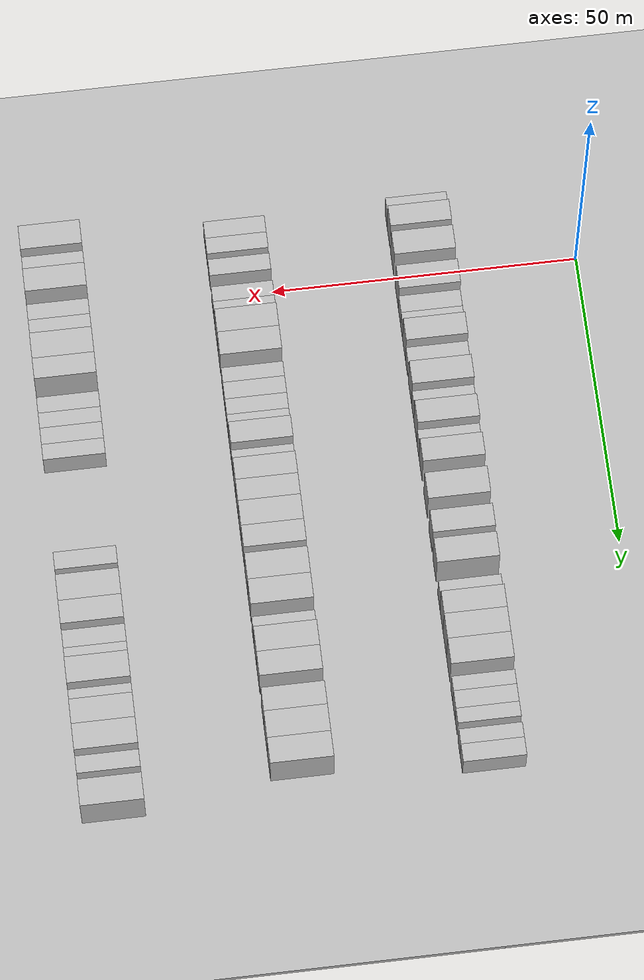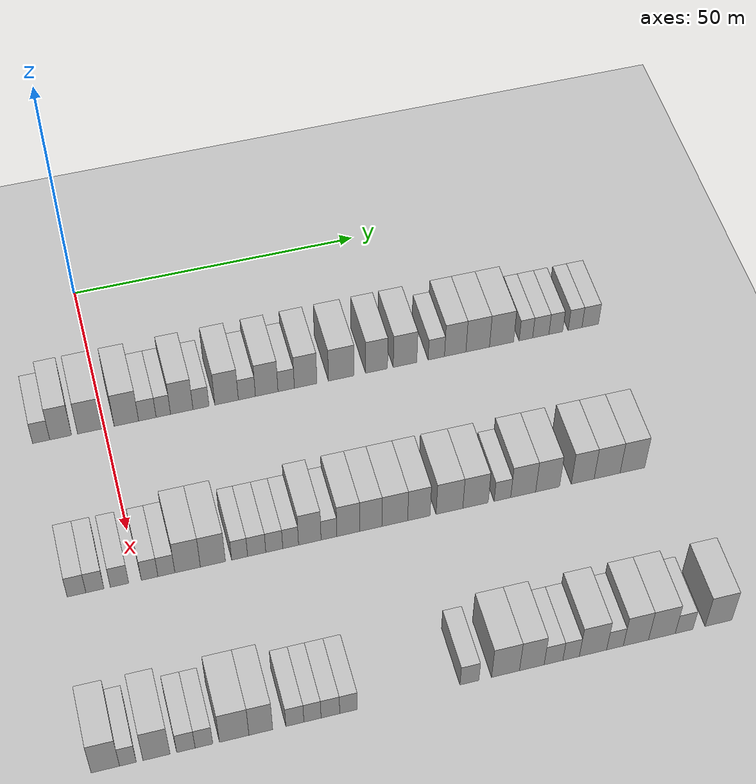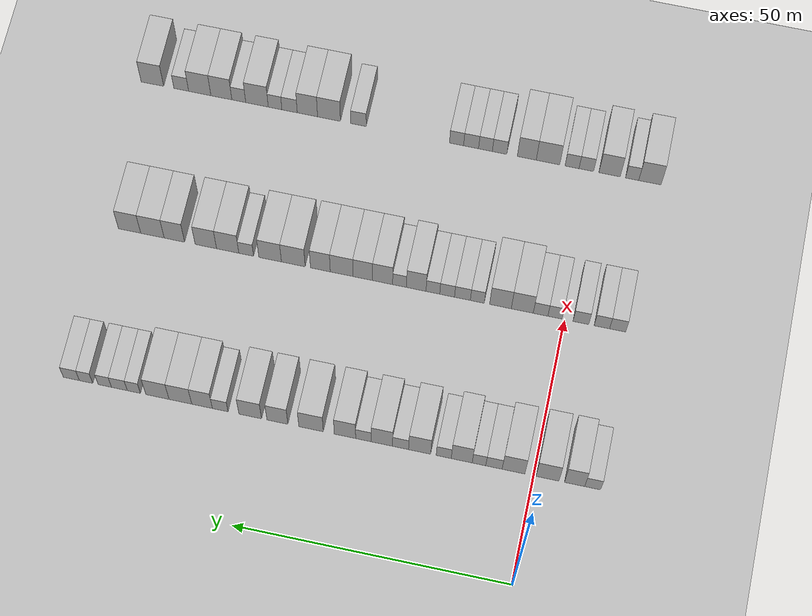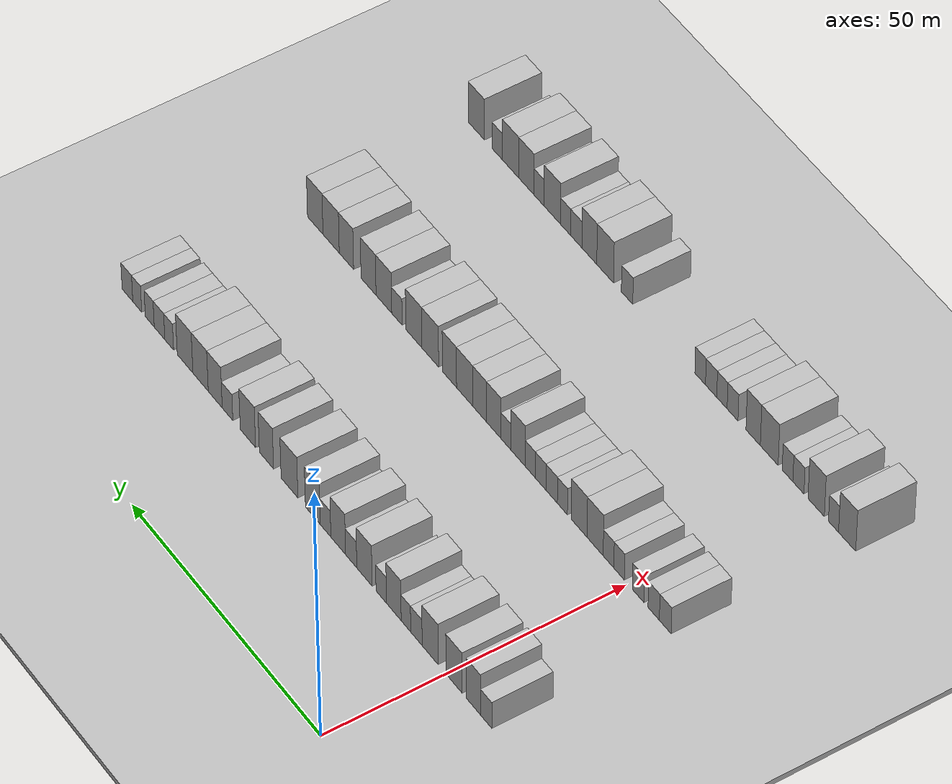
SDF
<sdf version="1.6">
 <world name="default">
  <include><name>ground_plane_1</name><uri>model://HANNAS_ground_plane</uri></include>
  <include>
   <name>ground_plane_2</name>
   <uri>model://HANNAS_ground_plane</uri>
   <pose>100 0 0  0 0 0</pose>
  </include>
  <model name="building_103">
   <static>1</static>
   <pose>25.0000 -10.5104 0 0.000000 0.000000 0.000000</pose>
   <link name="link">
    <pose>0 0 3.00 0 0 0</pose>
    <collision name="collision"><geometry><box><size>10.0000 2.8526 6.0000</size></box></geometry></collision>
    <visual name="visual">
     <cast_shadows>0</cast_shadows>
     <geometry><box><size>10.0000 2.8526 6.0000</size></box></geometry>
     <material>
      <script>
       <uri>model://HANNAS_wall/materials/scripts</uri>
       <uri>model://HANNAS_wall/materials/textures</uri>
       <name>vrc/HANNAS_wall</name>
      </script>
     </material>
    </visual>
   </link>
  </model>
  <model name="building_104">
   <static>1</static>
   <pose>25.0000 -7.2760 0 0.000000 0.000000 0.000000</pose>
   <link name="link">
    <pose>0 0 4.50 0 0 0</pose>
    <collision name="collision"><geometry><box><size>10.0000 3.6163 9.0000</size></box></geometry></collision>
    <visual name="visual">
     <cast_shadows>0</cast_shadows>
     <geometry><box><size>10.0000 3.6163 9.0000</size></box></geometry>
     <material>
      <script>
       <uri>model://HANNAS_wall/materials/scripts</uri>
       <uri>model://HANNAS_wall/materials/textures</uri>
       <name>vrc/HANNAS_wall</name>
      </script>
     </material>
    </visual>
   </link>
  </model>
  <model name="building_105">
   <static>1</static>
   <pose>25.0000 -2.4095 0 0.000000 0.000000 0.000000</pose>
   <link name="link">
    <pose>0 0 4.50 0 0 0</pose>
    <collision name="collision"><geometry><box><size>10.0000 4.1167 9.0000</size></box></geometry></collision>
    <visual name="visual">
     <cast_shadows>0</cast_shadows>
     <geometry><box><size>10.0000 4.1167 9.0000</size></box></geometry>
     <material>
      <script>
       <uri>model://HANNAS_wall/materials/scripts</uri>
       <uri>model://HANNAS_wall/materials/textures</uri>
       <name>vrc/HANNAS_wall</name>
      </script>
     </material>
    </visual>
   </link>
  </model>
  <model name="building_106">
   <static>1</static>
   <pose>25.0000 3.6999 0 0.000000 0.000000 0.000000</pose>
   <link name="link">
    <pose>0 0 4.50 0 0 0</pose>
    <collision name="collision"><geometry><box><size>10.0000 4.1021 9.0000</size></box></geometry></collision>
    <visual name="visual">
     <cast_shadows>0</cast_shadows>
     <geometry><box><size>10.0000 4.1021 9.0000</size></box></geometry>
     <material>
      <script>
       <uri>model://HANNAS_wall/materials/scripts</uri>
       <uri>model://HANNAS_wall/materials/textures</uri>
       <name>vrc/HANNAS_wall</name>
      </script>
     </material>
    </visual>
   </link>
  </model>
  <model name="building_107">
   <static>1</static>
   <pose>25.0000 7.2233 0 0.000000 0.000000 0.000000</pose>
   <link name="link">
    <pose>0 0 3.00 0 0 0</pose>
    <collision name="collision"><geometry><box><size>10.0000 2.9448 6.0000</size></box></geometry></collision>
    <visual name="visual">
     <cast_shadows>0</cast_shadows>
     <geometry><box><size>10.0000 2.9448 6.0000</size></box></geometry>
     <material>
      <script>
       <uri>model://HANNAS_wall/materials/scripts</uri>
       <uri>model://HANNAS_wall/materials/textures</uri>
       <name>vrc/HANNAS_wall</name>
      </script>
     </material>
    </visual>
   </link>
  </model>
  <model name="building_108">
   <static>1</static>
   <pose>25.0000 9.9185 0 0.000000 0.000000 0.000000</pose>
   <link name="link">
    <pose>0 0 3.00 0 0 0</pose>
    <collision name="collision"><geometry><box><size>10.0000 2.4455 6.0000</size></box></geometry></collision>
    <visual name="visual">
     <cast_shadows>0</cast_shadows>
     <geometry><box><size>10.0000 2.4455 6.0000</size></box></geometry>
     <material>
      <script>
       <uri>model://HANNAS_wall/materials/scripts</uri>
       <uri>model://HANNAS_wall/materials/textures</uri>
       <name>vrc/HANNAS_wall</name>
      </script>
     </material>
    </visual>
   </link>
  </model>
  <model name="building_109">
   <static>1</static>
   <pose>25.0000 13.0404 0 0.000000 0.000000 0.000000</pose>
   <link name="link">
    <pose>0 0 4.50 0 0 0</pose>
    <collision name="collision"><geometry><box><size>10.0000 3.7983 9.0000</size></box></geometry></collision>
    <visual name="visual">
     <cast_shadows>0</cast_shadows>
     <geometry><box><size>10.0000 3.7983 9.0000</size></box></geometry>
     <material>
      <script>
       <uri>model://HANNAS_wall/materials/scripts</uri>
       <uri>model://HANNAS_wall/materials/textures</uri>
       <name>vrc/HANNAS_wall</name>
      </script>
     </material>
    </visual>
   </link>
  </model>
  <model name="building_110">
   <static>1</static>
   <pose>25.0000 16.2977 0 0.000000 0.000000 0.000000</pose>
   <link name="link">
    <pose>0 0 3.00 0 0 0</pose>
    <collision name="collision"><geometry><box><size>10.0000 2.7164 6.0000</size></box></geometry></collision>
    <visual name="visual">
     <cast_shadows>0</cast_shadows>
     <geometry><box><size>10.0000 2.7164 6.0000</size></box></geometry>
     <material>
      <script>
       <uri>model://HANNAS_wall/materials/scripts</uri>
       <uri>model://HANNAS_wall/materials/textures</uri>
       <name>vrc/HANNAS_wall</name>
      </script>
     </material>
    </visual>
   </link>
  </model>
  <model name="building_111">
   <static>1</static>
   <pose>25.0000 20.6557 0 0.000000 0.000000 0.000000</pose>
   <link name="link">
    <pose>0 0 4.50 0 0 0</pose>
    <collision name="collision"><geometry><box><size>10.0000 3.9995 9.0000</size></box></geometry></collision>
    <visual name="visual">
     <cast_shadows>0</cast_shadows>
     <geometry><box><size>10.0000 3.9995 9.0000</size></box></geometry>
     <material>
      <script>
       <uri>model://HANNAS_wall/materials/scripts</uri>
       <uri>model://HANNAS_wall/materials/textures</uri>
       <name>vrc/HANNAS_wall</name>
      </script>
     </material>
    </visual>
   </link>
  </model>
  <model name="building_112">
   <static>1</static>
   <pose>25.0000 24.1164 0 0.000000 0.000000 0.000000</pose>
   <link name="link">
    <pose>0 0 3.00 0 0 0</pose>
    <collision name="collision"><geometry><box><size>10.0000 2.9220 6.0000</size></box></geometry></collision>
    <visual name="visual">
     <cast_shadows>0</cast_shadows>
     <geometry><box><size>10.0000 2.9220 6.0000</size></box></geometry>
     <material>
      <script>
       <uri>model://HANNAS_wall/materials/scripts</uri>
       <uri>model://HANNAS_wall/materials/textures</uri>
       <name>vrc/HANNAS_wall</name>
      </script>
     </material>
    </visual>
   </link>
  </model>
  <model name="building_113">
   <static>1</static>
   <pose>25.0000 27.5131 0 0.000000 0.000000 0.000000</pose>
   <link name="link">
    <pose>0 0 4.50 0 0 0</pose>
    <collision name="collision"><geometry><box><size>10.0000 3.8715 9.0000</size></box></geometry></collision>
    <visual name="visual">
     <cast_shadows>0</cast_shadows>
     <geometry><box><size>10.0000 3.8715 9.0000</size></box></geometry>
     <material>
      <script>
       <uri>model://HANNAS_wall/materials/scripts</uri>
       <uri>model://HANNAS_wall/materials/textures</uri>
       <name>vrc/HANNAS_wall</name>
      </script>
     </material>
    </visual>
   </link>
  </model>
  <model name="building_114">
   <static>1</static>
   <pose>25.0000 30.8566 0 0.000000 0.000000 0.000000</pose>
   <link name="link">
    <pose>0 0 3.00 0 0 0</pose>
    <collision name="collision"><geometry><box><size>10.0000 2.8154 6.0000</size></box></geometry></collision>
    <visual name="visual">
     <cast_shadows>0</cast_shadows>
     <geometry><box><size>10.0000 2.8154 6.0000</size></box></geometry>
     <material>
      <script>
       <uri>model://HANNAS_wall/materials/scripts</uri>
       <uri>model://HANNAS_wall/materials/textures</uri>
       <name>vrc/HANNAS_wall</name>
      </script>
     </material>
    </visual>
   </link>
  </model>
  <model name="building_115">
   <static>1</static>
   <pose>25.0000 34.2120 0 0.000000 0.000000 0.000000</pose>
   <link name="link">
    <pose>0 0 4.50 0 0 0</pose>
    <collision name="collision"><geometry><box><size>10.0000 3.8953 9.0000</size></box></geometry></collision>
    <visual name="visual">
     <cast_shadows>0</cast_shadows>
     <geometry><box><size>10.0000 3.8953 9.0000</size></box></geometry>
     <material>
      <script>
       <uri>model://HANNAS_wall/materials/scripts</uri>
       <uri>model://HANNAS_wall/materials/textures</uri>
       <name>vrc/HANNAS_wall</name>
      </script>
     </material>
    </visual>
   </link>
  </model>
  <model name="building_116">
   <static>1</static>
   <pose>25.0000 40.3929 0 0.000000 0.000000 0.000000</pose>
   <link name="link">
    <pose>0 0 4.50 0 0 0</pose>
    <collision name="collision"><geometry><box><size>10.0000 4.4666 9.0000</size></box></geometry></collision>
    <visual name="visual">
     <cast_shadows>0</cast_shadows>
     <geometry><box><size>10.0000 4.4666 9.0000</size></box></geometry>
     <material>
      <script>
       <uri>model://HANNAS_wall/materials/scripts</uri>
       <uri>model://HANNAS_wall/materials/textures</uri>
       <name>vrc/HANNAS_wall</name>
      </script>
     </material>
    </visual>
   </link>
  </model>
  <model name="building_117">
   <static>1</static>
   <pose>25.0000 46.5357 0 0.000000 0.000000 0.000000</pose>
   <link name="link">
    <pose>0 0 4.50 0 0 0</pose>
    <collision name="collision"><geometry><box><size>10.0000 3.8190 9.0000</size></box></geometry></collision>
    <visual name="visual">
     <cast_shadows>0</cast_shadows>
     <geometry><box><size>10.0000 3.8190 9.0000</size></box></geometry>
     <material>
      <script>
       <uri>model://HANNAS_wall/materials/scripts</uri>
       <uri>model://HANNAS_wall/materials/textures</uri>
       <name>vrc/HANNAS_wall</name>
      </script>
     </material>
    </visual>
   </link>
  </model>
  <model name="building_118">
   <static>1</static>
   <pose>25.0000 51.5162 0 0.000000 0.000000 0.000000</pose>
   <link name="link">
    <pose>0 0 4.50 0 0 0</pose>
    <collision name="collision"><geometry><box><size>10.0000 4.1419 9.0000</size></box></geometry></collision>
    <visual name="visual">
     <cast_shadows>0</cast_shadows>
     <geometry><box><size>10.0000 4.1419 9.0000</size></box></geometry>
     <material>
      <script>
       <uri>model://HANNAS_wall/materials/scripts</uri>
       <uri>model://HANNAS_wall/materials/textures</uri>
       <name>vrc/HANNAS_wall</name>
      </script>
     </material>
    </visual>
   </link>
  </model>
  <model name="building_119">
   <static>1</static>
   <pose>25.0000 57.0269 0 0.000000 0.000000 0.000000</pose>
   <link name="link">
    <pose>0 0 3.00 0 0 0</pose>
    <collision name="collision"><geometry><box><size>10.0000 2.8795 6.0000</size></box></geometry></collision>
    <visual name="visual">
     <cast_shadows>0</cast_shadows>
     <geometry><box><size>10.0000 2.8795 6.0000</size></box></geometry>
     <material>
      <script>
       <uri>model://HANNAS_wall/materials/scripts</uri>
       <uri>model://HANNAS_wall/materials/textures</uri>
       <name>vrc/HANNAS_wall</name>
      </script>
     </material>
    </visual>
   </link>
  </model>
  <model name="building_120">
   <static>1</static>
   <pose>25.0000 60.3635 0 0.000000 0.000000 0.000000</pose>
   <link name="link">
    <pose>0 0 4.50 0 0 0</pose>
    <collision name="collision"><geometry><box><size>10.0000 3.7938 9.0000</size></box></geometry></collision>
    <visual name="visual">
     <cast_shadows>0</cast_shadows>
     <geometry><box><size>10.0000 3.7938 9.0000</size></box></geometry>
     <material>
      <script>
       <uri>model://HANNAS_wall/materials/scripts</uri>
       <uri>model://HANNAS_wall/materials/textures</uri>
       <name>vrc/HANNAS_wall</name>
      </script>
     </material>
    </visual>
   </link>
  </model>
  <model name="building_121">
   <static>1</static>
   <pose>25.0000 64.3561 0 0.000000 0.000000 0.000000</pose>
   <link name="link">
    <pose>0 0 4.50 0 0 0</pose>
    <collision name="collision"><geometry><box><size>10.0000 4.1913 9.0000</size></box></geometry></collision>
    <visual name="visual">
     <cast_shadows>0</cast_shadows>
     <geometry><box><size>10.0000 4.1913 9.0000</size></box></geometry>
     <material>
      <script>
       <uri>model://HANNAS_wall/materials/scripts</uri>
       <uri>model://HANNAS_wall/materials/textures</uri>
       <name>vrc/HANNAS_wall</name>
      </script>
     </material>
    </visual>
   </link>
  </model>
  <model name="building_122">
   <static>1</static>
   <pose>25.0000 68.5981 0 0.000000 0.000000 0.000000</pose>
   <link name="link">
    <pose>0 0 4.50 0 0 0</pose>
    <collision name="collision"><geometry><box><size>10.0000 4.2927 9.0000</size></box></geometry></collision>
    <visual name="visual">
     <cast_shadows>0</cast_shadows>
     <geometry><box><size>10.0000 4.2927 9.0000</size></box></geometry>
     <material>
      <script>
       <uri>model://HANNAS_wall/materials/scripts</uri>
       <uri>model://HANNAS_wall/materials/textures</uri>
       <name>vrc/HANNAS_wall</name>
      </script>
     </material>
    </visual>
   </link>
  </model>
  <model name="building_123">
   <static>1</static>
   <pose>25.0000 72.9526 0 0.000000 0.000000 0.000000</pose>
   <link name="link">
    <pose>0 0 3.00 0 0 0</pose>
    <collision name="collision"><geometry><box><size>10.0000 2.4162 6.0000</size></box></geometry></collision>
    <visual name="visual">
     <cast_shadows>0</cast_shadows>
     <geometry><box><size>10.0000 2.4162 6.0000</size></box></geometry>
     <material>
      <script>
       <uri>model://HANNAS_wall/materials/scripts</uri>
       <uri>model://HANNAS_wall/materials/textures</uri>
       <name>vrc/HANNAS_wall</name>
      </script>
     </material>
    </visual>
   </link>
  </model>
  <model name="building_124">
   <static>1</static>
   <pose>25.0000 75.6239 0 0.000000 0.000000 0.000000</pose>
   <link name="link">
    <pose>0 0 3.00 0 0 0</pose>
    <collision name="collision"><geometry><box><size>10.0000 2.9265 6.0000</size></box></geometry></collision>
    <visual name="visual">
     <cast_shadows>0</cast_shadows>
     <geometry><box><size>10.0000 2.9265 6.0000</size></box></geometry>
     <material>
      <script>
       <uri>model://HANNAS_wall/materials/scripts</uri>
       <uri>model://HANNAS_wall/materials/textures</uri>
       <name>vrc/HANNAS_wall</name>
      </script>
     </material>
    </visual>
   </link>
  </model>
  <model name="building_125">
   <static>1</static>
   <pose>25.0000 78.3247 0 0.000000 0.000000 0.000000</pose>
   <link name="link">
    <pose>0 0 3.00 0 0 0</pose>
    <collision name="collision"><geometry><box><size>10.0000 2.4751 6.0000</size></box></geometry></collision>
    <visual name="visual">
     <cast_shadows>0</cast_shadows>
     <geometry><box><size>10.0000 2.4751 6.0000</size></box></geometry>
     <material>
      <script>
       <uri>model://HANNAS_wall/materials/scripts</uri>
       <uri>model://HANNAS_wall/materials/textures</uri>
       <name>vrc/HANNAS_wall</name>
      </script>
     </material>
    </visual>
   </link>
  </model>
  <model name="building_126">
   <static>1</static>
   <pose>25.0000 81.8036 0 0.000000 0.000000 0.000000</pose>
   <link name="link">
    <pose>0 0 3.00 0 0 0</pose>
    <collision name="collision"><geometry><box><size>10.0000 2.4827 6.0000</size></box></geometry></collision>
    <visual name="visual">
     <cast_shadows>0</cast_shadows>
     <geometry><box><size>10.0000 2.4827 6.0000</size></box></geometry>
     <material>
      <script>
       <uri>model://HANNAS_wall/materials/scripts</uri>
       <uri>model://HANNAS_wall/materials/textures</uri>
       <name>vrc/HANNAS_wall</name>
      </script>
     </material>
    </visual>
   </link>
  </model>
  <model name="building_127">
   <static>1</static>
   <pose>25.0000 84.5330 0 0.000000 0.000000 0.000000</pose>
   <link name="link">
    <pose>0 0 3.00 0 0 0</pose>
    <collision name="collision"><geometry><box><size>10.0000 2.9761 6.0000</size></box></geometry></collision>
    <visual name="visual">
     <cast_shadows>0</cast_shadows>
     <geometry><box><size>10.0000 2.9761 6.0000</size></box></geometry>
     <material>
      <script>
       <uri>model://HANNAS_wall/materials/scripts</uri>
       <uri>model://HANNAS_wall/materials/textures</uri>
       <name>vrc/HANNAS_wall</name>
      </script>
     </material>
    </visual>
   </link>
  </model>
  <model name="building_341">
   <static>1</static>
   <pose>55.0000 -9.6979 0 0.000000 0.000000 0.000000</pose>
   <link name="link">
    <pose>0 0 3.00 0 0 0</pose>
    <collision name="collision"><geometry><box><size>10.0000 2.9450 6.0000</size></box></geometry></collision>
    <visual name="visual">
     <cast_shadows>0</cast_shadows>
     <geometry><box><size>10.0000 2.9450 6.0000</size></box></geometry>
     <material>
      <script>
       <uri>model://HANNAS_wall/materials/scripts</uri>
       <uri>model://HANNAS_wall/materials/textures</uri>
       <name>vrc/HANNAS_wall</name>
      </script>
     </material>
    </visual>
   </link>
  </model>
  <model name="building_342">
   <static>1</static>
   <pose>55.0000 -6.8082 0 0.000000 0.000000 0.000000</pose>
   <link name="link">
    <pose>0 0 3.00 0 0 0</pose>
    <collision name="collision"><geometry><box><size>10.0000 2.8345 6.0000</size></box></geometry></collision>
    <visual name="visual">
     <cast_shadows>0</cast_shadows>
     <geometry><box><size>10.0000 2.8345 6.0000</size></box></geometry>
     <material>
      <script>
       <uri>model://HANNAS_wall/materials/scripts</uri>
       <uri>model://HANNAS_wall/materials/textures</uri>
       <name>vrc/HANNAS_wall</name>
      </script>
     </material>
    </visual>
   </link>
  </model>
  <model name="building_343">
   <static>1</static>
   <pose>55.0000 -2.9350 0 0.000000 0.000000 0.000000</pose>
   <link name="link">
    <pose>0 0 3.00 0 0 0</pose>
    <collision name="collision"><geometry><box><size>10.0000 2.9118 6.0000</size></box></geometry></collision>
    <visual name="visual">
     <cast_shadows>0</cast_shadows>
     <geometry><box><size>10.0000 2.9118 6.0000</size></box></geometry>
     <material>
      <script>
       <uri>model://HANNAS_wall/materials/scripts</uri>
       <uri>model://HANNAS_wall/materials/textures</uri>
       <name>vrc/HANNAS_wall</name>
      </script>
     </material>
    </visual>
   </link>
  </model>
  <model name="building_344">
   <static>1</static>
   <pose>55.0000 1.8401 0 0.000000 0.000000 0.000000</pose>
   <link name="link">
    <pose>0 0 3.00 0 0 0</pose>
    <collision name="collision"><geometry><box><size>10.0000 2.6385 6.0000</size></box></geometry></collision>
    <visual name="visual">
     <cast_shadows>0</cast_shadows>
     <geometry><box><size>10.0000 2.6385 6.0000</size></box></geometry>
     <material>
      <script>
       <uri>model://HANNAS_wall/materials/scripts</uri>
       <uri>model://HANNAS_wall/materials/textures</uri>
       <name>vrc/HANNAS_wall</name>
      </script>
     </material>
    </visual>
   </link>
  </model>
  <model name="building_345">
   <static>1</static>
   <pose>55.0000 4.5077 0 0.000000 0.000000 0.000000</pose>
   <link name="link">
    <pose>0 0 3.00 0 0 0</pose>
    <collision name="collision"><geometry><box><size>10.0000 2.6967 6.0000</size></box></geometry></collision>
    <visual name="visual">
     <cast_shadows>0</cast_shadows>
     <geometry><box><size>10.0000 2.6967 6.0000</size></box></geometry>
     <material>
      <script>
       <uri>model://HANNAS_wall/materials/scripts</uri>
       <uri>model://HANNAS_wall/materials/textures</uri>
       <name>vrc/HANNAS_wall</name>
      </script>
     </material>
    </visual>
   </link>
  </model>
  <model name="building_346">
   <static>1</static>
   <pose>55.0000 7.8903 0 0.000000 0.000000 0.000000</pose>
   <link name="link">
    <pose>0 0 4.50 0 0 0</pose>
    <collision name="collision"><geometry><box><size>10.0000 4.0685 9.0000</size></box></geometry></collision>
    <visual name="visual">
     <cast_shadows>0</cast_shadows>
     <geometry><box><size>10.0000 4.0685 9.0000</size></box></geometry>
     <material>
      <script>
       <uri>model://HANNAS_wall/materials/scripts</uri>
       <uri>model://HANNAS_wall/materials/textures</uri>
       <name>vrc/HANNAS_wall</name>
      </script>
     </material>
    </visual>
   </link>
  </model>
  <model name="building_347">
   <static>1</static>
   <pose>55.0000 11.9347 0 0.000000 0.000000 0.000000</pose>
   <link name="link">
    <pose>0 0 4.50 0 0 0</pose>
    <collision name="collision"><geometry><box><size>10.0000 4.0203 9.0000</size></box></geometry></collision>
    <visual name="visual">
     <cast_shadows>0</cast_shadows>
     <geometry><box><size>10.0000 4.0203 9.0000</size></box></geometry>
     <material>
      <script>
       <uri>model://HANNAS_wall/materials/scripts</uri>
       <uri>model://HANNAS_wall/materials/textures</uri>
       <name>vrc/HANNAS_wall</name>
      </script>
     </material>
    </visual>
   </link>
  </model>
  <model name="building_348">
   <static>1</static>
   <pose>55.0000 16.2301 0 0.000000 0.000000 0.000000</pose>
   <link name="link">
    <pose>0 0 3.00 0 0 0</pose>
    <collision name="collision"><geometry><box><size>10.0000 2.5705 6.0000</size></box></geometry></collision>
    <visual name="visual">
     <cast_shadows>0</cast_shadows>
     <geometry><box><size>10.0000 2.5705 6.0000</size></box></geometry>
     <material>
      <script>
       <uri>model://HANNAS_wall/materials/scripts</uri>
       <uri>model://HANNAS_wall/materials/textures</uri>
       <name>vrc/HANNAS_wall</name>
      </script>
     </material>
    </visual>
   </link>
  </model>
  <model name="building_349">
   <static>1</static>
   <pose>55.0000 18.9829 0 0.000000 0.000000 0.000000</pose>
   <link name="link">
    <pose>0 0 3.00 0 0 0</pose>
    <collision name="collision"><geometry><box><size>10.0000 2.9351 6.0000</size></box></geometry></collision>
    <visual name="visual">
     <cast_shadows>0</cast_shadows>
     <geometry><box><size>10.0000 2.9351 6.0000</size></box></geometry>
     <material>
      <script>
       <uri>model://HANNAS_wall/materials/scripts</uri>
       <uri>model://HANNAS_wall/materials/textures</uri>
       <name>vrc/HANNAS_wall</name>
      </script>
     </material>
    </visual>
   </link>
  </model>
  <model name="building_350">
   <static>1</static>
   <pose>55.0000 21.8233 0 0.000000 0.000000 0.000000</pose>
   <link name="link">
    <pose>0 0 3.00 0 0 0</pose>
    <collision name="collision"><geometry><box><size>10.0000 2.7456 6.0000</size></box></geometry></collision>
    <visual name="visual">
     <cast_shadows>0</cast_shadows>
     <geometry><box><size>10.0000 2.7456 6.0000</size></box></geometry>
     <material>
      <script>
       <uri>model://HANNAS_wall/materials/scripts</uri>
       <uri>model://HANNAS_wall/materials/textures</uri>
       <name>vrc/HANNAS_wall</name>
      </script>
     </material>
    </visual>
   </link>
  </model>
  <model name="building_351">
   <static>1</static>
   <pose>55.0000 24.4768 0 0.000000 0.000000 0.000000</pose>
   <link name="link">
    <pose>0 0 3.00 0 0 0</pose>
    <collision name="collision"><geometry><box><size>10.0000 2.5614 6.0000</size></box></geometry></collision>
    <visual name="visual">
     <cast_shadows>0</cast_shadows>
     <geometry><box><size>10.0000 2.5614 6.0000</size></box></geometry>
     <material>
      <script>
       <uri>model://HANNAS_wall/materials/scripts</uri>
       <uri>model://HANNAS_wall/materials/textures</uri>
       <name>vrc/HANNAS_wall</name>
      </script>
     </material>
    </visual>
   </link>
  </model>
  <model name="building_352">
   <static>1</static>
   <pose>55.0000 27.5903 0 0.000000 0.000000 0.000000</pose>
   <link name="link">
    <pose>0 0 4.50 0 0 0</pose>
    <collision name="collision"><geometry><box><size>10.0000 3.6657 9.0000</size></box></geometry></collision>
    <visual name="visual">
     <cast_shadows>0</cast_shadows>
     <geometry><box><size>10.0000 3.6657 9.0000</size></box></geometry>
     <material>
      <script>
       <uri>model://HANNAS_wall/materials/scripts</uri>
       <uri>model://HANNAS_wall/materials/textures</uri>
       <name>vrc/HANNAS_wall</name>
      </script>
     </material>
    </visual>
   </link>
  </model>
  <model name="building_353">
   <static>1</static>
   <pose>55.0000 30.7093 0 0.000000 0.000000 0.000000</pose>
   <link name="link">
    <pose>0 0 3.00 0 0 0</pose>
    <collision name="collision"><geometry><box><size>10.0000 2.5723 6.0000</size></box></geometry></collision>
    <visual name="visual">
     <cast_shadows>0</cast_shadows>
     <geometry><box><size>10.0000 2.5723 6.0000</size></box></geometry>
     <material>
      <script>
       <uri>model://HANNAS_wall/materials/scripts</uri>
       <uri>model://HANNAS_wall/materials/textures</uri>
       <name>vrc/HANNAS_wall</name>
      </script>
     </material>
    </visual>
   </link>
  </model>
  <model name="building_354">
   <static>1</static>
   <pose>55.0000 33.8671 0 0.000000 0.000000 0.000000</pose>
   <link name="link">
    <pose>0 0 4.50 0 0 0</pose>
    <collision name="collision"><geometry><box><size>10.0000 3.7433 9.0000</size></box></geometry></collision>
    <visual name="visual">
     <cast_shadows>0</cast_shadows>
     <geometry><box><size>10.0000 3.7433 9.0000</size></box></geometry>
     <material>
      <script>
       <uri>model://HANNAS_wall/materials/scripts</uri>
       <uri>model://HANNAS_wall/materials/textures</uri>
       <name>vrc/HANNAS_wall</name>
      </script>
     </material>
    </visual>
   </link>
  </model>
  <model name="building_355">
   <static>1</static>
   <pose>55.0000 37.5650 0 0.000000 0.000000 0.000000</pose>
   <link name="link">
    <pose>0 0 4.50 0 0 0</pose>
    <collision name="collision"><geometry><box><size>10.0000 3.6526 9.0000</size></box></geometry></collision>
    <visual name="visual">
     <cast_shadows>0</cast_shadows>
     <geometry><box><size>10.0000 3.6526 9.0000</size></box></geometry>
     <material>
      <script>
       <uri>model://HANNAS_wall/materials/scripts</uri>
       <uri>model://HANNAS_wall/materials/textures</uri>
       <name>vrc/HANNAS_wall</name>
      </script>
     </material>
    </visual>
   </link>
  </model>
  <model name="building_356">
   <static>1</static>
   <pose>55.0000 41.5224 0 0.000000 0.000000 0.000000</pose>
   <link name="link">
    <pose>0 0 4.50 0 0 0</pose>
    <collision name="collision"><geometry><box><size>10.0000 4.2622 9.0000</size></box></geometry></collision>
    <visual name="visual">
     <cast_shadows>0</cast_shadows>
     <geometry><box><size>10.0000 4.2622 9.0000</size></box></geometry>
     <material>
      <script>
       <uri>model://HANNAS_wall/materials/scripts</uri>
       <uri>model://HANNAS_wall/materials/textures</uri>
       <name>vrc/HANNAS_wall</name>
      </script>
     </material>
    </visual>
   </link>
  </model>
  <model name="building_357">
   <static>1</static>
   <pose>55.0000 45.5115 0 0.000000 0.000000 0.000000</pose>
   <link name="link">
    <pose>0 0 4.50 0 0 0</pose>
    <collision name="collision"><geometry><box><size>10.0000 3.7159 9.0000</size></box></geometry></collision>
    <visual name="visual">
     <cast_shadows>0</cast_shadows>
     <geometry><box><size>10.0000 3.7159 9.0000</size></box></geometry>
     <material>
      <script>
       <uri>model://HANNAS_wall/materials/scripts</uri>
       <uri>model://HANNAS_wall/materials/textures</uri>
       <name>vrc/HANNAS_wall</name>
      </script>
     </material>
    </visual>
   </link>
  </model>
  <model name="building_358">
   <static>1</static>
   <pose>55.0000 50.5996 0 0.000000 0.000000 0.000000</pose>
   <link name="link">
    <pose>0 0 4.50 0 0 0</pose>
    <collision name="collision"><geometry><box><size>10.0000 4.4604 9.0000</size></box></geometry></collision>
    <visual name="visual">
     <cast_shadows>0</cast_shadows>
     <geometry><box><size>10.0000 4.4604 9.0000</size></box></geometry>
     <material>
      <script>
       <uri>model://HANNAS_wall/materials/scripts</uri>
       <uri>model://HANNAS_wall/materials/textures</uri>
       <name>vrc/HANNAS_wall</name>
      </script>
     </material>
    </visual>
   </link>
  </model>
  <model name="building_359">
   <static>1</static>
   <pose>55.0000 54.9534 0 0.000000 0.000000 0.000000</pose>
   <link name="link">
    <pose>0 0 4.50 0 0 0</pose>
    <collision name="collision"><geometry><box><size>10.0000 4.2471 9.0000</size></box></geometry></collision>
    <visual name="visual">
     <cast_shadows>0</cast_shadows>
     <geometry><box><size>10.0000 4.2471 9.0000</size></box></geometry>
     <material>
      <script>
       <uri>model://HANNAS_wall/materials/scripts</uri>
       <uri>model://HANNAS_wall/materials/textures</uri>
       <name>vrc/HANNAS_wall</name>
      </script>
     </material>
    </visual>
   </link>
  </model>
  <model name="building_360">
   <static>1</static>
   <pose>55.0000 59.4679 0 0.000000 0.000000 0.000000</pose>
   <link name="link">
    <pose>0 0 3.00 0 0 0</pose>
    <collision name="collision"><geometry><box><size>10.0000 2.7819 6.0000</size></box></geometry></collision>
    <visual name="visual">
     <cast_shadows>0</cast_shadows>
     <geometry><box><size>10.0000 2.7819 6.0000</size></box></geometry>
     <material>
      <script>
       <uri>model://HANNAS_wall/materials/scripts</uri>
       <uri>model://HANNAS_wall/materials/textures</uri>
       <name>vrc/HANNAS_wall</name>
      </script>
     </material>
    </visual>
   </link>
  </model>
  <model name="building_361">
   <static>1</static>
   <pose>55.0000 62.9666 0 0.000000 0.000000 0.000000</pose>
   <link name="link">
    <pose>0 0 4.50 0 0 0</pose>
    <collision name="collision"><geometry><box><size>10.0000 4.2155 9.0000</size></box></geometry></collision>
    <visual name="visual">
     <cast_shadows>0</cast_shadows>
     <geometry><box><size>10.0000 4.2155 9.0000</size></box></geometry>
     <material>
      <script>
       <uri>model://HANNAS_wall/materials/scripts</uri>
       <uri>model://HANNAS_wall/materials/textures</uri>
       <name>vrc/HANNAS_wall</name>
      </script>
     </material>
    </visual>
   </link>
  </model>
  <model name="building_362">
   <static>1</static>
   <pose>55.0000 67.0980 0 0.000000 0.000000 0.000000</pose>
   <link name="link">
    <pose>0 0 4.50 0 0 0</pose>
    <collision name="collision"><geometry><box><size>10.0000 4.0474 9.0000</size></box></geometry></collision>
    <visual name="visual">
     <cast_shadows>0</cast_shadows>
     <geometry><box><size>10.0000 4.0474 9.0000</size></box></geometry>
     <material>
      <script>
       <uri>model://HANNAS_wall/materials/scripts</uri>
       <uri>model://HANNAS_wall/materials/textures</uri>
       <name>vrc/HANNAS_wall</name>
      </script>
     </material>
    </visual>
   </link>
  </model>
  <model name="building_363">
   <static>1</static>
   <pose>55.0000 73.0691 0 0.000000 0.000000 0.000000</pose>
   <link name="link">
    <pose>0 0 4.50 0 0 0</pose>
    <collision name="collision"><geometry><box><size>10.0000 3.8949 9.0000</size></box></geometry></collision>
    <visual name="visual">
     <cast_shadows>0</cast_shadows>
     <geometry><box><size>10.0000 3.8949 9.0000</size></box></geometry>
     <material>
      <script>
       <uri>model://HANNAS_wall/materials/scripts</uri>
       <uri>model://HANNAS_wall/materials/textures</uri>
       <name>vrc/HANNAS_wall</name>
      </script>
     </material>
    </visual>
   </link>
  </model>
  <model name="building_364">
   <static>1</static>
   <pose>55.0000 77.2363 0 0.000000 0.000000 0.000000</pose>
   <link name="link">
    <pose>0 0 4.50 0 0 0</pose>
    <collision name="collision"><geometry><box><size>10.0000 4.4394 9.0000</size></box></geometry></collision>
    <visual name="visual">
     <cast_shadows>0</cast_shadows>
     <geometry><box><size>10.0000 4.4394 9.0000</size></box></geometry>
     <material>
      <script>
       <uri>model://HANNAS_wall/materials/scripts</uri>
       <uri>model://HANNAS_wall/materials/textures</uri>
       <name>vrc/HANNAS_wall</name>
      </script>
     </material>
    </visual>
   </link>
  </model>
  <model name="building_365">
   <static>1</static>
   <pose>55.0000 81.5741 0 0.000000 0.000000 0.000000</pose>
   <link name="link">
    <pose>0 0 4.50 0 0 0</pose>
    <collision name="collision"><geometry><box><size>10.0000 4.2361 9.0000</size></box></geometry></collision>
    <visual name="visual">
     <cast_shadows>0</cast_shadows>
     <geometry><box><size>10.0000 4.2361 9.0000</size></box></geometry>
     <material>
      <script>
       <uri>model://HANNAS_wall/materials/scripts</uri>
       <uri>model://HANNAS_wall/materials/textures</uri>
       <name>vrc/HANNAS_wall</name>
      </script>
     </material>
    </visual>
   </link>
  </model>
  <model name="building_569">
   <static>1</static>
   <pose>85.0000 -10.5110 0 0.000000 0.000000 0.000000</pose>
   <link name="link">
    <pose>0 0 4.50 0 0 0</pose>
    <collision name="collision"><geometry><box><size>10.0000 4.2071 9.0000</size></box></geometry></collision>
    <visual name="visual">
     <cast_shadows>0</cast_shadows>
     <geometry><box><size>10.0000 4.2071 9.0000</size></box></geometry>
     <material>
      <script>
       <uri>model://HANNAS_wall/materials/scripts</uri>
       <uri>model://HANNAS_wall/materials/textures</uri>
       <name>vrc/HANNAS_wall</name>
      </script>
     </material>
    </visual>
   </link>
  </model>
  <model name="building_570">
   <static>1</static>
   <pose>85.0000 -7.1642 0 0.000000 0.000000 0.000000</pose>
   <link name="link">
    <pose>0 0 3.00 0 0 0</pose>
    <collision name="collision"><geometry><box><size>10.0000 2.4864 6.0000</size></box></geometry></collision>
    <visual name="visual">
     <cast_shadows>0</cast_shadows>
     <geometry><box><size>10.0000 2.4864 6.0000</size></box></geometry>
     <material>
      <script>
       <uri>model://HANNAS_wall/materials/scripts</uri>
       <uri>model://HANNAS_wall/materials/textures</uri>
       <name>vrc/HANNAS_wall</name>
      </script>
     </material>
    </visual>
   </link>
  </model>
  <model name="building_571">
   <static>1</static>
   <pose>85.0000 -2.9042 0 0.000000 0.000000 0.000000</pose>
   <link name="link">
    <pose>0 0 4.50 0 0 0</pose>
    <collision name="collision"><geometry><box><size>10.0000 4.0337 9.0000</size></box></geometry></collision>
    <visual name="visual">
     <cast_shadows>0</cast_shadows>
     <geometry><box><size>10.0000 4.0337 9.0000</size></box></geometry>
     <material>
      <script>
       <uri>model://HANNAS_wall/materials/scripts</uri>
       <uri>model://HANNAS_wall/materials/textures</uri>
       <name>vrc/HANNAS_wall</name>
      </script>
     </material>
    </visual>
   </link>
  </model>
  <model name="building_572">
   <static>1</static>
   <pose>85.0000 1.4943 0 0.000000 0.000000 0.000000</pose>
   <link name="link">
    <pose>0 0 3.00 0 0 0</pose>
    <collision name="collision"><geometry><box><size>10.0000 2.7633 6.0000</size></box></geometry></collision>
    <visual name="visual">
     <cast_shadows>0</cast_shadows>
     <geometry><box><size>10.0000 2.7633 6.0000</size></box></geometry>
     <material>
      <script>
       <uri>model://HANNAS_wall/materials/scripts</uri>
       <uri>model://HANNAS_wall/materials/textures</uri>
       <name>vrc/HANNAS_wall</name>
      </script>
     </material>
    </visual>
   </link>
  </model>
  <model name="building_573">
   <static>1</static>
   <pose>85.0000 4.2021 0 0.000000 0.000000 0.000000</pose>
   <link name="link">
    <pose>0 0 3.00 0 0 0</pose>
    <collision name="collision"><geometry><box><size>10.0000 2.6524 6.0000</size></box></geometry></collision>
    <visual name="visual">
     <cast_shadows>0</cast_shadows>
     <geometry><box><size>10.0000 2.6524 6.0000</size></box></geometry>
     <material>
      <script>
       <uri>model://HANNAS_wall/materials/scripts</uri>
       <uri>model://HANNAS_wall/materials/textures</uri>
       <name>vrc/HANNAS_wall</name>
      </script>
     </material>
    </visual>
   </link>
  </model>
  <model name="building_574">
   <static>1</static>
   <pose>85.0000 8.7588 0 0.000000 0.000000 0.000000</pose>
   <link name="link">
    <pose>0 0 4.50 0 0 0</pose>
    <collision name="collision"><geometry><box><size>10.0000 4.4610 9.0000</size></box></geometry></collision>
    <visual name="visual">
     <cast_shadows>0</cast_shadows>
     <geometry><box><size>10.0000 4.4610 9.0000</size></box></geometry>
     <material>
      <script>
       <uri>model://HANNAS_wall/materials/scripts</uri>
       <uri>model://HANNAS_wall/materials/textures</uri>
       <name>vrc/HANNAS_wall</name>
      </script>
     </material>
    </visual>
   </link>
  </model>
  <model name="building_575">
   <static>1</static>
   <pose>85.0000 12.7911 0 0.000000 0.000000 0.000000</pose>
   <link name="link">
    <pose>0 0 4.50 0 0 0</pose>
    <collision name="collision"><geometry><box><size>10.0000 3.6037 9.0000</size></box></geometry></collision>
    <visual name="visual">
     <cast_shadows>0</cast_shadows>
     <geometry><box><size>10.0000 3.6037 9.0000</size></box></geometry>
     <material>
      <script>
       <uri>model://HANNAS_wall/materials/scripts</uri>
       <uri>model://HANNAS_wall/materials/textures</uri>
       <name>vrc/HANNAS_wall</name>
      </script>
     </material>
    </visual>
   </link>
  </model>
  <model name="building_576">
   <static>1</static>
   <pose>85.0000 17.9692 0 0.000000 0.000000 0.000000</pose>
   <link name="link">
    <pose>0 0 3.00 0 0 0</pose>
    <collision name="collision"><geometry><box><size>10.0000 2.7524 6.0000</size></box></geometry></collision>
    <visual name="visual">
     <cast_shadows>0</cast_shadows>
     <geometry><box><size>10.0000 2.7524 6.0000</size></box></geometry>
     <material>
      <script>
       <uri>model://HANNAS_wall/materials/scripts</uri>
       <uri>model://HANNAS_wall/materials/textures</uri>
       <name>vrc/HANNAS_wall</name>
      </script>
     </material>
    </visual>
   </link>
  </model>
  <model name="building_577">
   <static>1</static>
   <pose>85.0000 20.6582 0 0.000000 0.000000 0.000000</pose>
   <link name="link">
    <pose>0 0 3.00 0 0 0</pose>
    <collision name="collision"><geometry><box><size>10.0000 2.6257 6.0000</size></box></geometry></collision>
    <visual name="visual">
     <cast_shadows>0</cast_shadows>
     <geometry><box><size>10.0000 2.6257 6.0000</size></box></geometry>
     <material>
      <script>
       <uri>model://HANNAS_wall/materials/scripts</uri>
       <uri>model://HANNAS_wall/materials/textures</uri>
       <name>vrc/HANNAS_wall</name>
      </script>
     </material>
    </visual>
   </link>
  </model>
  <model name="building_578">
   <static>1</static>
   <pose>85.0000 23.3983 0 0.000000 0.000000 0.000000</pose>
   <link name="link">
    <pose>0 0 3.00 0 0 0</pose>
    <collision name="collision"><geometry><box><size>10.0000 2.8544 6.0000</size></box></geometry></collision>
    <visual name="visual">
     <cast_shadows>0</cast_shadows>
     <geometry><box><size>10.0000 2.8544 6.0000</size></box></geometry>
     <material>
      <script>
       <uri>model://HANNAS_wall/materials/scripts</uri>
       <uri>model://HANNAS_wall/materials/textures</uri>
       <name>vrc/HANNAS_wall</name>
      </script>
     </material>
    </visual>
   </link>
  </model>
  <model name="building_579">
   <static>1</static>
   <pose>85.0000 26.1770 0 0.000000 0.000000 0.000000</pose>
   <link name="link">
    <pose>0 0 3.00 0 0 0</pose>
    <collision name="collision"><geometry><box><size>10.0000 2.7030 6.0000</size></box></geometry></collision>
    <visual name="visual">
     <cast_shadows>0</cast_shadows>
     <geometry><box><size>10.0000 2.7030 6.0000</size></box></geometry>
     <material>
      <script>
       <uri>model://HANNAS_wall/materials/scripts</uri>
       <uri>model://HANNAS_wall/materials/textures</uri>
       <name>vrc/HANNAS_wall</name>
      </script>
     </material>
    </visual>
   </link>
  </model>
  <model name="building_580">
   <static>1</static>
   <pose>85.0000 44.9857 0 0.000000 0.000000 0.000000</pose>
   <link name="link">
    <pose>0 0 3.00 0 0 0</pose>
    <collision name="collision"><geometry><box><size>10.0000 2.9715 6.0000</size></box></geometry></collision>
    <visual name="visual">
     <cast_shadows>0</cast_shadows>
     <geometry><box><size>10.0000 2.9715 6.0000</size></box></geometry>
     <material>
      <script>
       <uri>model://HANNAS_wall/materials/scripts</uri>
       <uri>model://HANNAS_wall/materials/textures</uri>
       <name>vrc/HANNAS_wall</name>
      </script>
     </material>
    </visual>
   </link>
  </model>
  <model name="building_581">
   <static>1</static>
   <pose>85.0000 50.6754 0 0.000000 0.000000 0.000000</pose>
   <link name="link">
    <pose>0 0 4.50 0 0 0</pose>
    <collision name="collision"><geometry><box><size>10.0000 4.4081 9.0000</size></box></geometry></collision>
    <visual name="visual">
     <cast_shadows>0</cast_shadows>
     <geometry><box><size>10.0000 4.4081 9.0000</size></box></geometry>
     <material>
      <script>
       <uri>model://HANNAS_wall/materials/scripts</uri>
       <uri>model://HANNAS_wall/materials/textures</uri>
       <name>vrc/HANNAS_wall</name>
      </script>
     </material>
    </visual>
   </link>
  </model>
  <model name="building_582">
   <static>1</static>
   <pose>85.0000 54.8377 0 0.000000 0.000000 0.000000</pose>
   <link name="link">
    <pose>0 0 4.50 0 0 0</pose>
    <collision name="collision"><geometry><box><size>10.0000 3.9165 9.0000</size></box></geometry></collision>
    <visual name="visual">
     <cast_shadows>0</cast_shadows>
     <geometry><box><size>10.0000 3.9165 9.0000</size></box></geometry>
     <material>
      <script>
       <uri>model://HANNAS_wall/materials/scripts</uri>
       <uri>model://HANNAS_wall/materials/textures</uri>
       <name>vrc/HANNAS_wall</name>
      </script>
     </material>
    </visual>
   </link>
  </model>
  <model name="building_583">
   <static>1</static>
   <pose>85.0000 58.2847 0 0.000000 0.000000 0.000000</pose>
   <link name="link">
    <pose>0 0 3.00 0 0 0</pose>
    <collision name="collision"><geometry><box><size>10.0000 2.9775 6.0000</size></box></geometry></collision>
    <visual name="visual">
     <cast_shadows>0</cast_shadows>
     <geometry><box><size>10.0000 2.9775 6.0000</size></box></geometry>
     <material>
      <script>
       <uri>model://HANNAS_wall/materials/scripts</uri>
       <uri>model://HANNAS_wall/materials/textures</uri>
       <name>vrc/HANNAS_wall</name>
      </script>
     </material>
    </visual>
   </link>
  </model>
  <model name="building_584">
   <static>1</static>
   <pose>85.0000 61.0904 0 0.000000 0.000000 0.000000</pose>
   <link name="link">
    <pose>0 0 3.00 0 0 0</pose>
    <collision name="collision"><geometry><box><size>10.0000 2.6339 6.0000</size></box></geometry></collision>
    <visual name="visual">
     <cast_shadows>0</cast_shadows>
     <geometry><box><size>10.0000 2.6339 6.0000</size></box></geometry>
     <material>
      <script>
       <uri>model://HANNAS_wall/materials/scripts</uri>
       <uri>model://HANNAS_wall/materials/textures</uri>
       <name>vrc/HANNAS_wall</name>
      </script>
     </material>
    </visual>
   </link>
  </model>
  <model name="building_585">
   <static>1</static>
   <pose>85.0000 64.5924 0 0.000000 0.000000 0.000000</pose>
   <link name="link">
    <pose>0 0 4.50 0 0 0</pose>
    <collision name="collision"><geometry><box><size>10.0000 4.3702 9.0000</size></box></geometry></collision>
    <visual name="visual">
     <cast_shadows>0</cast_shadows>
     <geometry><box><size>10.0000 4.3702 9.0000</size></box></geometry>
     <material>
      <script>
       <uri>model://HANNAS_wall/materials/scripts</uri>
       <uri>model://HANNAS_wall/materials/textures</uri>
       <name>vrc/HANNAS_wall</name>
      </script>
     </material>
    </visual>
   </link>
  </model>
  <model name="building_586">
   <static>1</static>
   <pose>85.0000 68.1212 0 0.000000 0.000000 0.000000</pose>
   <link name="link">
    <pose>0 0 3.00 0 0 0</pose>
    <collision name="collision"><geometry><box><size>10.0000 2.6875 6.0000</size></box></geometry></collision>
    <visual name="visual">
     <cast_shadows>0</cast_shadows>
     <geometry><box><size>10.0000 2.6875 6.0000</size></box></geometry>
     <material>
      <script>
       <uri>model://HANNAS_wall/materials/scripts</uri>
       <uri>model://HANNAS_wall/materials/textures</uri>
       <name>vrc/HANNAS_wall</name>
      </script>
     </material>
    </visual>
   </link>
  </model>
  <model name="building_587">
   <static>1</static>
   <pose>85.0000 71.5010 0 0.000000 0.000000 0.000000</pose>
   <link name="link">
    <pose>0 0 4.50 0 0 0</pose>
    <collision name="collision"><geometry><box><size>10.0000 4.0722 9.0000</size></box></geometry></collision>
    <visual name="visual">
     <cast_shadows>0</cast_shadows>
     <geometry><box><size>10.0000 4.0722 9.0000</size></box></geometry>
     <material>
      <script>
       <uri>model://HANNAS_wall/materials/scripts</uri>
       <uri>model://HANNAS_wall/materials/textures</uri>
       <name>vrc/HANNAS_wall</name>
      </script>
     </material>
    </visual>
   </link>
  </model>
  <model name="building_588">
   <static>1</static>
   <pose>85.0000 75.7067 0 0.000000 0.000000 0.000000</pose>
   <link name="link">
    <pose>0 0 4.50 0 0 0</pose>
    <collision name="collision"><geometry><box><size>10.0000 4.3391 9.0000</size></box></geometry></collision>
    <visual name="visual">
     <cast_shadows>0</cast_shadows>
     <geometry><box><size>10.0000 4.3391 9.0000</size></box></geometry>
     <material>
      <script>
       <uri>model://HANNAS_wall/materials/scripts</uri>
       <uri>model://HANNAS_wall/materials/textures</uri>
       <name>vrc/HANNAS_wall</name>
      </script>
     </material>
    </visual>
   </link>
  </model>
  <model name="building_589">
   <static>1</static>
   <pose>85.0000 79.3103 0 0.000000 0.000000 0.000000</pose>
   <link name="link">
    <pose>0 0 3.00 0 0 0</pose>
    <collision name="collision"><geometry><box><size>10.0000 2.8681 6.0000</size></box></geometry></collision>
    <visual name="visual">
     <cast_shadows>0</cast_shadows>
     <geometry><box><size>10.0000 2.8681 6.0000</size></box></geometry>
     <material>
      <script>
       <uri>model://HANNAS_wall/materials/scripts</uri>
       <uri>model://HANNAS_wall/materials/textures</uri>
       <name>vrc/HANNAS_wall</name>
      </script>
     </material>
    </visual>
   </link>
  </model>
  <model name="building_590">
   <static>1</static>
   <pose>85.0000 84.9413 0 0.000000 0.000000 0.000000</pose>
   <link name="link">
    <pose>0 0 4.50 0 0 0</pose>
    <collision name="collision"><geometry><box><size>10.0000 4.3939 9.0000</size></box></geometry></collision>
    <visual name="visual">
     <cast_shadows>0</cast_shadows>
     <geometry><box><size>10.0000 4.3939 9.0000</size></box></geometry>
     <material>
      <script>
       <uri>model://HANNAS_wall/materials/scripts</uri>
       <uri>model://HANNAS_wall/materials/textures</uri>
       <name>vrc/HANNAS_wall</name>
      </script>
     </material>
    </visual>
   </link>
  </model>
 </world>
</sdf>
